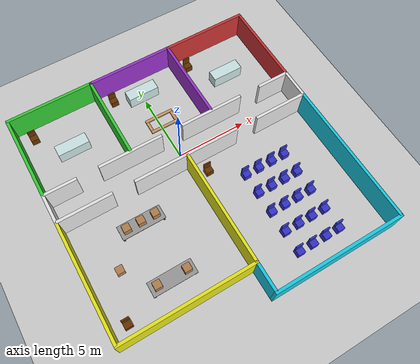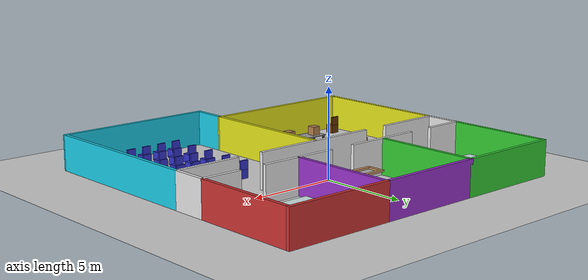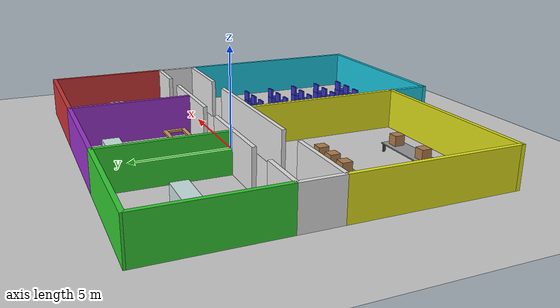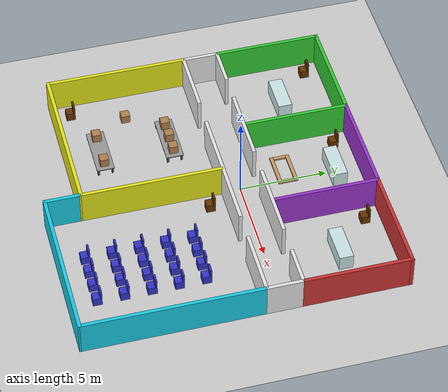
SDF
<sdf version="1.9">
 <world name="hospital_carrion_world">
  <physics name="1ms" type="ignored">
   <max_step_size>0.001</max_step_size>
   <real_time_factor>1</real_time_factor>
   <real_time_update_rate>1000</real_time_update_rate>
  </physics>
  <plugin name="gz::sim::systems::Physics" filename="ignition-gazebo-physics-system"/>
  <plugin name="gz::sim::systems::UserCommands" filename="ignition-gazebo-user-commands-system"/>
  <plugin name="gz::sim::systems::SceneBroadcaster" filename="ignition-gazebo-scene-broadcaster-system"/>
  <plugin name="gz::sim::systems::Contact" filename="ignition-gazebo-contact-system"/>
  <gravity>0 0 -9.8</gravity>
  <scene><ambient>0.5 0.5 0.5 1</ambient><background>0.7 0.7 0.7 1</background><shadows>true</shadows></scene>
  <light name="sun" type="directional">
   <pose>0 0 10 0 0 0</pose>
   <direction>-0.5 0.1 -0.9</direction>
   <diffuse>0.8 0.8 0.8 1</diffuse>
   <specular>0.2 0.2 0.2 1</specular>
  </light>
  <model name="ground_plane">
   <static>true</static>
   <link name="link">
    <collision name="collision">
     <geometry><plane><normal>0 0 1</normal><size>100 100</size></plane></geometry>
    </collision>
    <visual name="visual">
     <geometry><plane><normal>0 0 1</normal><size>100 100</size></plane></geometry>
     <material><ambient>0.8 0.8 0.8 1</ambient><diffuse>0.8 0.8 0.8 1</diffuse></material>
    </visual>
   </link>
  </model>
  <model name="building_structure">
   <static>true</static>
   <link name="walls">
    <visual name="cw_l">
     <pose>-9 0 1 0 0 1.5708</pose>
     <geometry><box><size>2 0.2 2</size></box></geometry>
     <material><ambient>0.9 0.9 0.9 1</ambient><diffuse>0.9 0.9 0.9 1</diffuse></material>
    </visual>
    <collision name="ccw_l">
     <pose>-9 0 1 0 0 1.5708</pose>
     <geometry><box><size>2 0.2 2</size></box></geometry>
    </collision>
    <visual name="cw_r">
     <pose>9 0 1 0 0 1.5708</pose>
     <geometry><box><size>2 0.2 2</size></box></geometry>
     <material><ambient>0.9 0.9 0.9 1</ambient><diffuse>0.9 0.9 0.9 1</diffuse></material>
    </visual>
    <collision name="ccw_r">
     <pose>9 0 1 0 0 1.5708</pose>
     <geometry><box><size>2 0.2 2</size></box></geometry>
    </collision>
    <visual name="cw_t1">
     <pose>-7.875 1 1 0 0 0</pose>
     <geometry><box><size>2.25 0.2 2</size></box></geometry>
     <material><ambient>0.9 0.9 0.9 1</ambient><diffuse>0.9 0.9 0.9 1</diffuse></material>
    </visual>
    <visual name="cw_t2">
     <pose>-3.0 1 1 0 0 0</pose>
     <geometry><box><size>4.5 0.2 2</size></box></geometry>
     <material><ambient>0.9 0.9 0.9 1</ambient><diffuse>0.9 0.9 0.9 1</diffuse></material>
    </visual>
    <visual name="cw_t3">
     <pose>3.0 1 1 0 0 0</pose>
     <geometry><box><size>4.5 0.2 2</size></box></geometry>
     <material><ambient>0.9 0.9 0.9 1</ambient><diffuse>0.9 0.9 0.9 1</diffuse></material>
    </visual>
    <visual name="cw_t4">
     <pose>7.875 1 1 0 0 0</pose>
     <geometry><box><size>2.25 0.2 2</size></box></geometry>
     <material><ambient>0.9 0.9 0.9 1</ambient><diffuse>0.9 0.9 0.9 1</diffuse></material>
    </visual>
    <collision name="ccw_t1">
     <pose>-7.875 1 1 0 0 0</pose>
     <geometry><box><size>2.25 0.2 2</size></box></geometry>
    </collision>
    <collision name="ccw_t2">
     <pose>-3.0 1 1 0 0 0</pose>
     <geometry><box><size>4.5 0.2 2</size></box></geometry>
    </collision>
    <collision name="ccw_t3">
     <pose>3.0 1 1 0 0 0</pose>
     <geometry><box><size>4.5 0.2 2</size></box></geometry>
    </collision>
    <collision name="ccw_t4">
     <pose>7.875 1 1 0 0 0</pose>
     <geometry><box><size>2.25 0.2 2</size></box></geometry>
    </collision>
    <visual name="cw_b1">
     <pose>-7.125 -1 1 0 0 0</pose>
     <geometry><box><size>3.75 0.2 2</size></box></geometry>
     <material><ambient>0.9 0.9 0.9 1</ambient><diffuse>0.9 0.9 0.9 1</diffuse></material>
    </visual>
    <visual name="cw_b2">
     <pose>0 -1 1 0 0 0</pose>
     <geometry><box><size>7.5 0.2 2</size></box></geometry>
     <material><ambient>0.9 0.9 0.9 1</ambient><diffuse>0.9 0.9 0.9 1</diffuse></material>
    </visual>
    <visual name="cw_b3">
     <pose>7.125 -1 1 0 0 0</pose>
     <geometry><box><size>3.75 0.2 2</size></box></geometry>
     <material><ambient>0.9 0.9 0.9 1</ambient><diffuse>0.9 0.9 0.9 1</diffuse></material>
    </visual>
    <collision name="ccw_b1">
     <pose>-7.125 -1 1 0 0 0</pose>
     <geometry><box><size>3.75 0.2 2</size></box></geometry>
    </collision>
    <collision name="ccw_b2">
     <pose>0 -1 1 0 0 0</pose>
     <geometry><box><size>7.5 0.2 2</size></box></geometry>
    </collision>
    <collision name="ccw_b3">
     <pose>7.125 -1 1 0 0 0</pose>
     <geometry><box><size>3.75 0.2 2</size></box></geometry>
    </collision>
    <visual name="r1_w1">
     <pose>-9 4 1 0 0 1.5708</pose>
     <geometry><box><size>6 0.2 2</size></box></geometry>
     <material><ambient>0.2 0.8 0.2 1</ambient><diffuse>0.2 0.8 0.2 1</diffuse></material>
    </visual>
    <visual name="r1_w2">
     <pose>-3 4 1 0 0 1.5708</pose>
     <geometry><box><size>6 0.2 2</size></box></geometry>
     <material><ambient>0.2 0.8 0.2 1</ambient><diffuse>0.2 0.8 0.2 1</diffuse></material>
    </visual>
    <visual name="r1_w3">
     <pose>-6 7 1 0 0 0</pose>
     <geometry><box><size>6.2 0.2 2</size></box></geometry>
     <material><ambient>0.2 0.8 0.2 1</ambient><diffuse>0.2 0.8 0.2 1</diffuse></material>
    </visual>
    <collision name="cr1_1">
     <pose>-9 4 1 0 0 1.5708</pose>
     <geometry><box><size>6 0.2 2</size></box></geometry>
    </collision>
    <collision name="cr1_2">
     <pose>-3 4 1 0 0 1.5708</pose>
     <geometry><box><size>6 0.2 2</size></box></geometry>
    </collision>
    <collision name="cr1_3">
     <pose>-6 7 1 0 0 0</pose>
     <geometry><box><size>6.2 0.2 2</size></box></geometry>
    </collision>
    <visual name="r2_w2">
     <pose>3 4 1 0 0 1.5708</pose>
     <geometry><box><size>6 0.2 2</size></box></geometry>
     <material><ambient>0.6 0.2 0.8 1</ambient><diffuse>0.6 0.2 0.8 1</diffuse></material>
    </visual>
    <visual name="r2_w3">
     <pose>0 7 1 0 0 0</pose>
     <geometry><box><size>6.2 0.2 2</size></box></geometry>
     <material><ambient>0.6 0.2 0.8 1</ambient><diffuse>0.6 0.2 0.8 1</diffuse></material>
    </visual>
    <collision name="cr2_2">
     <pose>3 4 1 0 0 1.5708</pose>
     <geometry><box><size>6 0.2 2</size></box></geometry>
    </collision>
    <collision name="cr2_3">
     <pose>0 7 1 0 0 0</pose>
     <geometry><box><size>6.2 0.2 2</size></box></geometry>
    </collision>
    <visual name="r3_w2">
     <pose>9 4 1 0 0 1.5708</pose>
     <geometry><box><size>6 0.2 2</size></box></geometry>
     <material><ambient>0.8 0.2 0.2 1</ambient><diffuse>0.8 0.2 0.2 1</diffuse></material>
    </visual>
    <visual name="r3_w3">
     <pose>6 7 1 0 0 0</pose>
     <geometry><box><size>6.2 0.2 2</size></box></geometry>
     <material><ambient>0.8 0.2 0.2 1</ambient><diffuse>0.8 0.2 0.2 1</diffuse></material>
    </visual>
    <collision name="cr3_2">
     <pose>9 4 1 0 0 1.5708</pose>
     <geometry><box><size>6 0.2 2</size></box></geometry>
    </collision>
    <collision name="cr3_3">
     <pose>6 7 1 0 0 0</pose>
     <geometry><box><size>6.2 0.2 2</size></box></geometry>
    </collision>
    <visual name="r4_w1">
     <pose>-9 -5 1 0 0 1.5708</pose>
     <geometry><box><size>8 0.2 2</size></box></geometry>
     <material><ambient>0.9 0.9 0.1 1</ambient><diffuse>0.9 0.9 0.1 1</diffuse></material>
    </visual>
    <visual name="r4_w2">
     <pose>0 -5 1 0 0 1.5708</pose>
     <geometry><box><size>8 0.2 2</size></box></geometry>
     <material><ambient>0.9 0.9 0.1 1</ambient><diffuse>0.9 0.9 0.1 1</diffuse></material>
    </visual>
    <visual name="r4_w3">
     <pose>-4.5 -9 1 0 0 0</pose>
     <geometry><box><size>9.2 0.2 2</size></box></geometry>
     <material><ambient>0.9 0.9 0.1 1</ambient><diffuse>0.9 0.9 0.1 1</diffuse></material>
    </visual>
    <collision name="cr4_1">
     <pose>-9 -5 1 0 0 1.5708</pose>
     <geometry><box><size>8 0.2 2</size></box></geometry>
    </collision>
    <collision name="cr4_2">
     <pose>0 -5 1 0 0 1.5708</pose>
     <geometry><box><size>8 0.2 2</size></box></geometry>
    </collision>
    <collision name="cr4_3">
     <pose>-4.5 -9 1 0 0 0</pose>
     <geometry><box><size>9.2 0.2 2</size></box></geometry>
    </collision>
    <visual name="r5_w2">
     <pose>9 -6 1 0 0 1.5708</pose>
     <geometry><box><size>10 0.2 2</size></box></geometry>
     <material><ambient>0.1 0.8 0.9 1</ambient><diffuse>0.1 0.8 0.9 1</diffuse></material>
    </visual>
    <visual name="r5_w3">
     <pose>4.5 -11 1 0 0 0</pose>
     <geometry><box><size>9.2 0.2 2</size></box></geometry>
     <material><ambient>0.1 0.8 0.9 1</ambient><diffuse>0.1 0.8 0.9 1</diffuse></material>
    </visual>
    <visual name="r5_w4">
     <pose>0 -10 1 0 0 1.5708</pose>
     <geometry><box><size>2 0.2 2</size></box></geometry>
     <material><ambient>0.1 0.8 0.9 1</ambient><diffuse>0.1 0.8 0.9 1</diffuse></material>
    </visual>
    <collision name="cr5_2">
     <pose>9 -6 1 0 0 1.5708</pose>
     <geometry><box><size>10 0.2 2</size></box></geometry>
    </collision>
    <collision name="cr5_3">
     <pose>4.5 -11 1 0 0 0</pose>
     <geometry><box><size>9.2 0.2 2</size></box></geometry>
    </collision>
    <collision name="cr5_4">
     <pose>0 -10 1 0 0 1.5708</pose>
     <geometry><box><size>2 0.2 2</size></box></geometry>
    </collision>
   </link>
  </model>
  <model name="operating_tables">
   <static>true</static>
   <link name="ot_link">
    <visual name="ot1">
     <pose>-6 4 0.45 0 0 0</pose>
     <geometry><box><size>2.2 0.8 0.9</size></box></geometry>
     <material><ambient>0.8 0.9 0.9 1</ambient><diffuse>0.8 0.9 0.9 1</diffuse></material>
    </visual>
    <collision name="cot1">
     <pose>-6 4 0.45 0 0 0</pose>
     <geometry><box><size>2.2 0.8 0.9</size></box></geometry>
    </collision>
    <visual name="ot2">
     <pose>0 5.5 0.45 0 0 0</pose>
     <geometry><box><size>2.2 0.8 0.9</size></box></geometry>
     <material><ambient>0.8 0.9 0.9 1</ambient><diffuse>0.8 0.9 0.9 1</diffuse></material>
    </visual>
    <collision name="cot2">
     <pose>0 5.5 0.45 0 0 0</pose>
     <geometry><box><size>2.2 0.8 0.9</size></box></geometry>
    </collision>
    <visual name="ot3">
     <pose>6 4 0.45 0 0 0</pose>
     <geometry><box><size>2.2 0.8 0.9</size></box></geometry>
     <material><ambient>0.8 0.9 0.9 1</ambient><diffuse>0.8 0.9 0.9 1</diffuse></material>
    </visual>
    <collision name="cot3">
     <pose>6 4 0.45 0 0 0</pose>
     <geometry><box><size>2.2 0.8 0.9</size></box></geometry>
    </collision>
   </link>
  </model>
  <model name="brown_chairs">
   <static>true</static>
   <link name="b_chairs_link">
    <visual name="bc1_s">
     <pose>-8 6 0.25 0 0 0</pose>
     <geometry><box><size>0.5 0.5 0.5</size></box></geometry>
     <material><ambient>0.4 0.2 0 1</ambient><diffuse>0.4 0.2 0 1</diffuse></material>
    </visual>
    <visual name="bc1_b">
     <pose>-8 6.2 0.75 0 0 0</pose>
     <geometry><box><size>0.5 0.1 0.5</size></box></geometry>
     <material><ambient>0.4 0.2 0 1</ambient><diffuse>0.4 0.2 0 1</diffuse></material>
    </visual>
    <collision name="cbc1">
     <pose>-8 6 0.25 0 0 0</pose>
     <geometry><box><size>0.5 0.5 0.5</size></box></geometry>
    </collision>
    <visual name="bc2_s">
     <pose>-2 6 0.25 0 0 0</pose>
     <geometry><box><size>0.5 0.5 0.5</size></box></geometry>
     <material><ambient>0.4 0.2 0 1</ambient><diffuse>0.4 0.2 0 1</diffuse></material>
    </visual>
    <visual name="bc2_b">
     <pose>-2 6.2 0.75 0 0 0</pose>
     <geometry><box><size>0.5 0.1 0.5</size></box></geometry>
     <material><ambient>0.4 0.2 0 1</ambient><diffuse>0.4 0.2 0 1</diffuse></material>
    </visual>
    <collision name="cbc2">
     <pose>-2 6 0.25 0 0 0</pose>
     <geometry><box><size>0.5 0.5 0.5</size></box></geometry>
    </collision>
    <visual name="bc3_s">
     <pose>4 6 0.25 0 0 0</pose>
     <geometry><box><size>0.5 0.5 0.5</size></box></geometry>
     <material><ambient>0.4 0.2 0 1</ambient><diffuse>0.4 0.2 0 1</diffuse></material>
    </visual>
    <visual name="bc3_b">
     <pose>4 6.2 0.75 0 0 0</pose>
     <geometry><box><size>0.5 0.1 0.5</size></box></geometry>
     <material><ambient>0.4 0.2 0 1</ambient><diffuse>0.4 0.2 0 1</diffuse></material>
    </visual>
    <collision name="cbc3">
     <pose>4 6 0.25 0 0 0</pose>
     <geometry><box><size>0.5 0.5 0.5</size></box></geometry>
    </collision>
    <visual name="bc4_s">
     <pose>-8 -8 0.25 0 0 0</pose>
     <geometry><box><size>0.5 0.5 0.5</size></box></geometry>
     <material><ambient>0.4 0.2 0 1</ambient><diffuse>0.4 0.2 0 1</diffuse></material>
    </visual>
    <visual name="bc4_b">
     <pose>-8 -7.8 0.75 0 0 0</pose>
     <geometry><box><size>0.5 0.1 0.5</size></box></geometry>
     <material><ambient>0.4 0.2 0 1</ambient><diffuse>0.4 0.2 0 1</diffuse></material>
    </visual>
    <collision name="cbc4">
     <pose>-8 -8 0.25 0 0 0</pose>
     <geometry><box><size>0.5 0.5 0.5</size></box></geometry>
    </collision>
    <visual name="bc5_s">
     <pose>1 -2 0.25 0 0 0</pose>
     <geometry><box><size>0.5 0.5 0.5</size></box></geometry>
     <material><ambient>0.4 0.2 0 1</ambient><diffuse>0.4 0.2 0 1</diffuse></material>
    </visual>
    <visual name="bc5_b">
     <pose>1 -1.8 0.75 0 0 0</pose>
     <geometry><box><size>0.5 0.1 0.5</size></box></geometry>
     <material><ambient>0.4 0.2 0 1</ambient><diffuse>0.4 0.2 0 1</diffuse></material>
    </visual>
    <collision name="cbc5">
     <pose>1 -2 0.25 0 0 0</pose>
     <geometry><box><size>0.5 0.5 0.5</size></box></geometry>
    </collision>
   </link>
  </model>
  <model name="warehouse_items">
   <static>true</static>
   <pose>-4.5 -5 0 0 0 0</pose>
   <link name="wh_link">
    <visual name="s1_top">
     <pose>0 2 0.4 0 0 0</pose>
     <geometry><box><size>3 1 0.05</size></box></geometry>
     <material><ambient>0.6 0.6 0.6 1</ambient><diffuse>0.6 0.6 0.6 1</diffuse></material>
    </visual>
    <visual name="s1_l1">
     <pose>1.4 2.4 0.2 0 0 0</pose>
     <geometry><box><size>0.1 0.1 0.4</size></box></geometry>
     <material><ambient>0.3 0.3 0.3 1</ambient><diffuse>0.3 0.3 0.3 1</diffuse></material>
    </visual>
    <visual name="s1_l2">
     <pose>-1.4 2.4 0.2 0 0 0</pose>
     <geometry><box><size>0.1 0.1 0.4</size></box></geometry>
     <material><ambient>0.3 0.3 0.3 1</ambient><diffuse>0.3 0.3 0.3 1</diffuse></material>
    </visual>
    <visual name="s1_l3">
     <pose>1.4 1.6 0.2 0 0 0</pose>
     <geometry><box><size>0.1 0.1 0.4</size></box></geometry>
     <material><ambient>0.3 0.3 0.3 1</ambient><diffuse>0.3 0.3 0.3 1</diffuse></material>
    </visual>
    <visual name="s1_l4">
     <pose>-1.4 1.6 0.2 0 0 0</pose>
     <geometry><box><size>0.1 0.1 0.4</size></box></geometry>
     <material><ambient>0.3 0.3 0.3 1</ambient><diffuse>0.3 0.3 0.3 1</diffuse></material>
    </visual>
    <collision name="cs1">
     <pose>0 2 0.4 0 0 0</pose>
     <geometry><box><size>3 1 0.05</size></box></geometry>
    </collision>
    <visual name="b1">
     <pose>1 2 0.675 0 0 0</pose>
     <geometry><box><size>0.5 0.5 0.5</size></box></geometry>
     <material><ambient>0.7 0.5 0.3 1</ambient><diffuse>0.7 0.5 0.3 1</diffuse></material>
    </visual>
    <visual name="b2">
     <pose>0 2 0.675 0 0 0</pose>
     <geometry><box><size>0.5 0.5 0.5</size></box></geometry>
     <material><ambient>0.7 0.5 0.3 1</ambient><diffuse>0.7 0.5 0.3 1</diffuse></material>
    </visual>
    <visual name="b3">
     <pose>-1 2 0.675 0 0 0</pose>
     <geometry><box><size>0.5 0.5 0.5</size></box></geometry>
     <material><ambient>0.7 0.5 0.3 1</ambient><diffuse>0.7 0.5 0.3 1</diffuse></material>
    </visual>
    <collision name="cb1">
     <pose>1 2 0.675 0 0 0</pose>
     <geometry><box><size>0.5 0.5 0.5</size></box></geometry>
    </collision>
    <collision name="cb2">
     <pose>0 2 0.675 0 0 0</pose>
     <geometry><box><size>0.5 0.5 0.5</size></box></geometry>
    </collision>
    <collision name="cb3">
     <pose>-1 2 0.675 0 0 0</pose>
     <geometry><box><size>0.5 0.5 0.5</size></box></geometry>
    </collision>
    <visual name="s2_top">
     <pose>0 -2 0.4 0 0 0</pose>
     <geometry><box><size>3 1 0.05</size></box></geometry>
     <material><ambient>0.6 0.6 0.6 1</ambient><diffuse>0.6 0.6 0.6 1</diffuse></material>
    </visual>
    <visual name="s2_l1">
     <pose>1.4 -1.6 0.2 0 0 0</pose>
     <geometry><box><size>0.1 0.1 0.4</size></box></geometry>
     <material><ambient>0.3 0.3 0.3 1</ambient><diffuse>0.3 0.3 0.3 1</diffuse></material>
    </visual>
    <visual name="s2_l2">
     <pose>-1.4 -1.6 0.2 0 0 0</pose>
     <geometry><box><size>0.1 0.1 0.4</size></box></geometry>
     <material><ambient>0.3 0.3 0.3 1</ambient><diffuse>0.3 0.3 0.3 1</diffuse></material>
    </visual>
    <visual name="s2_l3">
     <pose>1.4 -2.4 0.2 0 0 0</pose>
     <geometry><box><size>0.1 0.1 0.4</size></box></geometry>
     <material><ambient>0.3 0.3 0.3 1</ambient><diffuse>0.3 0.3 0.3 1</diffuse></material>
    </visual>
    <visual name="s2_l4">
     <pose>-1.4 -2.4 0.2 0 0 0</pose>
     <geometry><box><size>0.1 0.1 0.4</size></box></geometry>
     <material><ambient>0.3 0.3 0.3 1</ambient><diffuse>0.3 0.3 0.3 1</diffuse></material>
    </visual>
    <collision name="cs2">
     <pose>0 -2 0.4 0 0 0</pose>
     <geometry><box><size>3 1 0.05</size></box></geometry>
    </collision>
    <visual name="b4">
     <pose>1 -2 0.675 0 0 0</pose>
     <geometry><box><size>0.5 0.5 0.5</size></box></geometry>
     <material><ambient>0.7 0.5 0.3 1</ambient><diffuse>0.7 0.5 0.3 1</diffuse></material>
    </visual>
    <visual name="b5">
     <pose>-1 -2 0.675 0 0 0</pose>
     <geometry><box><size>0.5 0.5 0.5</size></box></geometry>
     <material><ambient>0.7 0.5 0.3 1</ambient><diffuse>0.7 0.5 0.3 1</diffuse></material>
    </visual>
    <visual name="b6">
     <pose>-2.5 0 0.25 0 0 0</pose>
     <geometry><box><size>0.5 0.5 0.5</size></box></geometry>
     <material><ambient>0.7 0.5 0.3 1</ambient><diffuse>0.7 0.5 0.3 1</diffuse></material>
    </visual>
    <collision name="cb4">
     <pose>1 -2 0.675 0 0 0</pose>
     <geometry><box><size>0.5 0.5 0.5</size></box></geometry>
    </collision>
    <collision name="cb5">
     <pose>-1 -2 0.675 0 0 0</pose>
     <geometry><box><size>0.5 0.5 0.5</size></box></geometry>
    </collision>
    <collision name="cb6">
     <pose>-2.5 0 0.25 0 0 0</pose>
     <geometry><box><size>0.5 0.5 0.5</size></box></geometry>
    </collision>
   </link>
  </model>
  <model name="waiting_chairs_r1">
   <static>true</static>
   <pose>4.5 -3.5 0 0 0 0</pose>
   <link name="link">
    <visual name="c1s">
     <pose>-1.5 0 0.25 0 0 0</pose>
     <geometry><box><size>0.5 0.5 0.5</size></box></geometry>
     <material><ambient>0.2 0.2 0.8 1</ambient><diffuse>0.2 0.2 0.8 1</diffuse></material>
    </visual>
    <visual name="c1b">
     <pose>-1.5 0.2 0.75 0 0 0</pose>
     <geometry><box><size>0.5 0.1 0.5</size></box></geometry>
     <material><ambient>0.2 0.2 0.8 1</ambient><diffuse>0.2 0.2 0.8 1</diffuse></material>
    </visual>
    <visual name="c2s">
     <pose>-0.5 0 0.25 0 0 0</pose>
     <geometry><box><size>0.5 0.5 0.5</size></box></geometry>
     <material><ambient>0.2 0.2 0.8 1</ambient><diffuse>0.2 0.2 0.8 1</diffuse></material>
    </visual>
    <visual name="c2b">
     <pose>-0.5 0.2 0.75 0 0 0</pose>
     <geometry><box><size>0.5 0.1 0.5</size></box></geometry>
     <material><ambient>0.2 0.2 0.8 1</ambient><diffuse>0.2 0.2 0.8 1</diffuse></material>
    </visual>
    <visual name="c3s">
     <pose>0.5 0 0.25 0 0 0</pose>
     <geometry><box><size>0.5 0.5 0.5</size></box></geometry>
     <material><ambient>0.2 0.2 0.8 1</ambient><diffuse>0.2 0.2 0.8 1</diffuse></material>
    </visual>
    <visual name="c3b">
     <pose>0.5 0.2 0.75 0 0 0</pose>
     <geometry><box><size>0.5 0.1 0.5</size></box></geometry>
     <material><ambient>0.2 0.2 0.8 1</ambient><diffuse>0.2 0.2 0.8 1</diffuse></material>
    </visual>
    <visual name="c4s">
     <pose>1.5 0 0.25 0 0 0</pose>
     <geometry><box><size>0.5 0.5 0.5</size></box></geometry>
     <material><ambient>0.2 0.2 0.8 1</ambient><diffuse>0.2 0.2 0.8 1</diffuse></material>
    </visual>
    <visual name="c4b">
     <pose>1.5 0.2 0.75 0 0 0</pose>
     <geometry><box><size>0.5 0.1 0.5</size></box></geometry>
     <material><ambient>0.2 0.2 0.8 1</ambient><diffuse>0.2 0.2 0.8 1</diffuse></material>
    </visual>
    <collision name="cc">
     <pose>0 0 0.25 0 0 0</pose>
     <geometry><box><size>3.5 0.5 0.5</size></box></geometry>
    </collision>
   </link>
  </model>
  <model name="waiting_chairs_r2">
   <static>true</static>
   <pose>4.5 -5.0 0 0 0 0</pose>
   <link name="link">
    <visual name="c1s">
     <pose>-1.5 0 0.25 0 0 0</pose>
     <geometry><box><size>0.5 0.5 0.5</size></box></geometry>
     <material><ambient>0.2 0.2 0.8 1</ambient><diffuse>0.2 0.2 0.8 1</diffuse></material>
    </visual>
    <visual name="c1b">
     <pose>-1.5 0.2 0.75 0 0 0</pose>
     <geometry><box><size>0.5 0.1 0.5</size></box></geometry>
     <material><ambient>0.2 0.2 0.8 1</ambient><diffuse>0.2 0.2 0.8 1</diffuse></material>
    </visual>
    <visual name="c2s">
     <pose>-0.5 0 0.25 0 0 0</pose>
     <geometry><box><size>0.5 0.5 0.5</size></box></geometry>
     <material><ambient>0.2 0.2 0.8 1</ambient><diffuse>0.2 0.2 0.8 1</diffuse></material>
    </visual>
    <visual name="c2b">
     <pose>-0.5 0.2 0.75 0 0 0</pose>
     <geometry><box><size>0.5 0.1 0.5</size></box></geometry>
     <material><ambient>0.2 0.2 0.8 1</ambient><diffuse>0.2 0.2 0.8 1</diffuse></material>
    </visual>
    <visual name="c3s">
     <pose>0.5 0 0.25 0 0 0</pose>
     <geometry><box><size>0.5 0.5 0.5</size></box></geometry>
     <material><ambient>0.2 0.2 0.8 1</ambient><diffuse>0.2 0.2 0.8 1</diffuse></material>
    </visual>
    <visual name="c3b">
     <pose>0.5 0.2 0.75 0 0 0</pose>
     <geometry><box><size>0.5 0.1 0.5</size></box></geometry>
     <material><ambient>0.2 0.2 0.8 1</ambient><diffuse>0.2 0.2 0.8 1</diffuse></material>
    </visual>
    <visual name="c4s">
     <pose>1.5 0 0.25 0 0 0</pose>
     <geometry><box><size>0.5 0.5 0.5</size></box></geometry>
     <material><ambient>0.2 0.2 0.8 1</ambient><diffuse>0.2 0.2 0.8 1</diffuse></material>
    </visual>
    <visual name="c4b">
     <pose>1.5 0.2 0.75 0 0 0</pose>
     <geometry><box><size>0.5 0.1 0.5</size></box></geometry>
     <material><ambient>0.2 0.2 0.8 1</ambient><diffuse>0.2 0.2 0.8 1</diffuse></material>
    </visual>
    <collision name="cc">
     <pose>0 0 0.25 0 0 0</pose>
     <geometry><box><size>3.5 0.5 0.5</size></box></geometry>
    </collision>
   </link>
  </model>
  <model name="waiting_chairs_r3">
   <static>true</static>
   <pose>4.5 -6.5 0 0 0 0</pose>
   <link name="link">
    <visual name="c1s">
     <pose>-1.5 0 0.25 0 0 0</pose>
     <geometry><box><size>0.5 0.5 0.5</size></box></geometry>
     <material><ambient>0.2 0.2 0.8 1</ambient><diffuse>0.2 0.2 0.8 1</diffuse></material>
    </visual>
    <visual name="c1b">
     <pose>-1.5 0.2 0.75 0 0 0</pose>
     <geometry><box><size>0.5 0.1 0.5</size></box></geometry>
     <material><ambient>0.2 0.2 0.8 1</ambient><diffuse>0.2 0.2 0.8 1</diffuse></material>
    </visual>
    <visual name="c2s">
     <pose>-0.5 0 0.25 0 0 0</pose>
     <geometry><box><size>0.5 0.5 0.5</size></box></geometry>
     <material><ambient>0.2 0.2 0.8 1</ambient><diffuse>0.2 0.2 0.8 1</diffuse></material>
    </visual>
    <visual name="c2b">
     <pose>-0.5 0.2 0.75 0 0 0</pose>
     <geometry><box><size>0.5 0.1 0.5</size></box></geometry>
     <material><ambient>0.2 0.2 0.8 1</ambient><diffuse>0.2 0.2 0.8 1</diffuse></material>
    </visual>
    <visual name="c3s">
     <pose>0.5 0 0.25 0 0 0</pose>
     <geometry><box><size>0.5 0.5 0.5</size></box></geometry>
     <material><ambient>0.2 0.2 0.8 1</ambient><diffuse>0.2 0.2 0.8 1</diffuse></material>
    </visual>
    <visual name="c3b">
     <pose>0.5 0.2 0.75 0 0 0</pose>
     <geometry><box><size>0.5 0.1 0.5</size></box></geometry>
     <material><ambient>0.2 0.2 0.8 1</ambient><diffuse>0.2 0.2 0.8 1</diffuse></material>
    </visual>
    <visual name="c4s">
     <pose>1.5 0 0.25 0 0 0</pose>
     <geometry><box><size>0.5 0.5 0.5</size></box></geometry>
     <material><ambient>0.2 0.2 0.8 1</ambient><diffuse>0.2 0.2 0.8 1</diffuse></material>
    </visual>
    <visual name="c4b">
     <pose>1.5 0.2 0.75 0 0 0</pose>
     <geometry><box><size>0.5 0.1 0.5</size></box></geometry>
     <material><ambient>0.2 0.2 0.8 1</ambient><diffuse>0.2 0.2 0.8 1</diffuse></material>
    </visual>
    <collision name="cc">
     <pose>0 0 0.25 0 0 0</pose>
     <geometry><box><size>3.5 0.5 0.5</size></box></geometry>
    </collision>
   </link>
  </model>
  <model name="waiting_chairs_r4">
   <static>true</static>
   <pose>4.5 -8.0 0 0 0 0</pose>
   <link name="link">
    <visual name="c1s">
     <pose>-1.5 0 0.25 0 0 0</pose>
     <geometry><box><size>0.5 0.5 0.5</size></box></geometry>
     <material><ambient>0.2 0.2 0.8 1</ambient><diffuse>0.2 0.2 0.8 1</diffuse></material>
    </visual>
    <visual name="c1b">
     <pose>-1.5 0.2 0.75 0 0 0</pose>
     <geometry><box><size>0.5 0.1 0.5</size></box></geometry>
     <material><ambient>0.2 0.2 0.8 1</ambient><diffuse>0.2 0.2 0.8 1</diffuse></material>
    </visual>
    <visual name="c2s">
     <pose>-0.5 0 0.25 0 0 0</pose>
     <geometry><box><size>0.5 0.5 0.5</size></box></geometry>
     <material><ambient>0.2 0.2 0.8 1</ambient><diffuse>0.2 0.2 0.8 1</diffuse></material>
    </visual>
    <visual name="c2b">
     <pose>-0.5 0.2 0.75 0 0 0</pose>
     <geometry><box><size>0.5 0.1 0.5</size></box></geometry>
     <material><ambient>0.2 0.2 0.8 1</ambient><diffuse>0.2 0.2 0.8 1</diffuse></material>
    </visual>
    <visual name="c3s">
     <pose>0.5 0 0.25 0 0 0</pose>
     <geometry><box><size>0.5 0.5 0.5</size></box></geometry>
     <material><ambient>0.2 0.2 0.8 1</ambient><diffuse>0.2 0.2 0.8 1</diffuse></material>
    </visual>
    <visual name="c3b">
     <pose>0.5 0.2 0.75 0 0 0</pose>
     <geometry><box><size>0.5 0.1 0.5</size></box></geometry>
     <material><ambient>0.2 0.2 0.8 1</ambient><diffuse>0.2 0.2 0.8 1</diffuse></material>
    </visual>
    <visual name="c4s">
     <pose>1.5 0 0.25 0 0 0</pose>
     <geometry><box><size>0.5 0.5 0.5</size></box></geometry>
     <material><ambient>0.2 0.2 0.8 1</ambient><diffuse>0.2 0.2 0.8 1</diffuse></material>
    </visual>
    <visual name="c4b">
     <pose>1.5 0.2 0.75 0 0 0</pose>
     <geometry><box><size>0.5 0.1 0.5</size></box></geometry>
     <material><ambient>0.2 0.2 0.8 1</ambient><diffuse>0.2 0.2 0.8 1</diffuse></material>
    </visual>
    <collision name="cc">
     <pose>0 0 0.25 0 0 0</pose>
     <geometry><box><size>3.5 0.5 0.5</size></box></geometry>
    </collision>
   </link>
  </model>
  <model name="waiting_chairs_r5">
   <static>true</static>
   <pose>4.5 -9.5 0 0 0 0</pose>
   <link name="link">
    <visual name="c1s">
     <pose>-1.5 0 0.25 0 0 0</pose>
     <geometry><box><size>0.5 0.5 0.5</size></box></geometry>
     <material><ambient>0.2 0.2 0.8 1</ambient><diffuse>0.2 0.2 0.8 1</diffuse></material>
    </visual>
    <visual name="c1b">
     <pose>-1.5 0.2 0.75 0 0 0</pose>
     <geometry><box><size>0.5 0.1 0.5</size></box></geometry>
     <material><ambient>0.2 0.2 0.8 1</ambient><diffuse>0.2 0.2 0.8 1</diffuse></material>
    </visual>
    <visual name="c2s">
     <pose>-0.5 0 0.25 0 0 0</pose>
     <geometry><box><size>0.5 0.5 0.5</size></box></geometry>
     <material><ambient>0.2 0.2 0.8 1</ambient><diffuse>0.2 0.2 0.8 1</diffuse></material>
    </visual>
    <visual name="c2b">
     <pose>-0.5 0.2 0.75 0 0 0</pose>
     <geometry><box><size>0.5 0.1 0.5</size></box></geometry>
     <material><ambient>0.2 0.2 0.8 1</ambient><diffuse>0.2 0.2 0.8 1</diffuse></material>
    </visual>
    <visual name="c3s">
     <pose>0.5 0 0.25 0 0 0</pose>
     <geometry><box><size>0.5 0.5 0.5</size></box></geometry>
     <material><ambient>0.2 0.2 0.8 1</ambient><diffuse>0.2 0.2 0.8 1</diffuse></material>
    </visual>
    <visual name="c3b">
     <pose>0.5 0.2 0.75 0 0 0</pose>
     <geometry><box><size>0.5 0.1 0.5</size></box></geometry>
     <material><ambient>0.2 0.2 0.8 1</ambient><diffuse>0.2 0.2 0.8 1</diffuse></material>
    </visual>
    <visual name="c4s">
     <pose>1.5 0 0.25 0 0 0</pose>
     <geometry><box><size>0.5 0.5 0.5</size></box></geometry>
     <material><ambient>0.2 0.2 0.8 1</ambient><diffuse>0.2 0.2 0.8 1</diffuse></material>
    </visual>
    <visual name="c4b">
     <pose>1.5 0.2 0.75 0 0 0</pose>
     <geometry><box><size>0.5 0.1 0.5</size></box></geometry>
     <material><ambient>0.2 0.2 0.8 1</ambient><diffuse>0.2 0.2 0.8 1</diffuse></material>
    </visual>
    <collision name="cc">
     <pose>0 0 0.25 0 0 0</pose>
     <geometry><box><size>3.5 0.5 0.5</size></box></geometry>
    </collision>
   </link>
  </model>
  <model name="custom_hole_desk">
   <static>true</static>
   <pose>0 2.5 0 0 0 0</pose>
   <link name="desk_link">
    <visual name="top_front">
     <pose>0 0.45 0.95 0 0 0</pose>
     <geometry><box><size>2.0 0.2 0.1</size></box></geometry>
     <material><ambient>0.8 0.6 0.4 1</ambient><diffuse>0.8 0.6 0.4 1</diffuse></material>
    </visual>
    <visual name="top_back">
     <pose>0 -0.45 0.95 0 0 0</pose>
     <geometry><box><size>2.0 0.2 0.1</size></box></geometry>
     <material><ambient>0.8 0.6 0.4 1</ambient><diffuse>0.8 0.6 0.4 1</diffuse></material>
    </visual>
    <visual name="top_left">
     <pose>-0.9 0 0.95 0 0 0</pose>
     <geometry><box><size>0.2 0.7 0.1</size></box></geometry>
     <material><ambient>0.8 0.6 0.4 1</ambient><diffuse>0.8 0.6 0.4 1</diffuse></material>
    </visual>
    <visual name="top_right">
     <pose>0.9 0 0.95 0 0 0</pose>
     <geometry><box><size>0.2 0.7 0.1</size></box></geometry>
     <material><ambient>0.8 0.6 0.4 1</ambient><diffuse>0.8 0.6 0.4 1</diffuse></material>
    </visual>
    <collision name="ctf">
     <pose>0 0.45 0.95 0 0 0</pose>
     <geometry><box><size>2.0 0.2 0.1</size></box></geometry>
    </collision>
    <collision name="ctb">
     <pose>0 -0.45 0.95 0 0 0</pose>
     <geometry><box><size>2.0 0.2 0.1</size></box></geometry>
    </collision>
    <collision name="ctl">
     <pose>-0.9 0 0.95 0 0 0</pose>
     <geometry><box><size>0.2 0.7 0.1</size></box></geometry>
    </collision>
    <collision name="ctr">
     <pose>0.9 0 0.95 0 0 0</pose>
     <geometry><box><size>0.2 0.7 0.1</size></box></geometry>
    </collision>
   </link>
  </model>
 </world>
</sdf>
